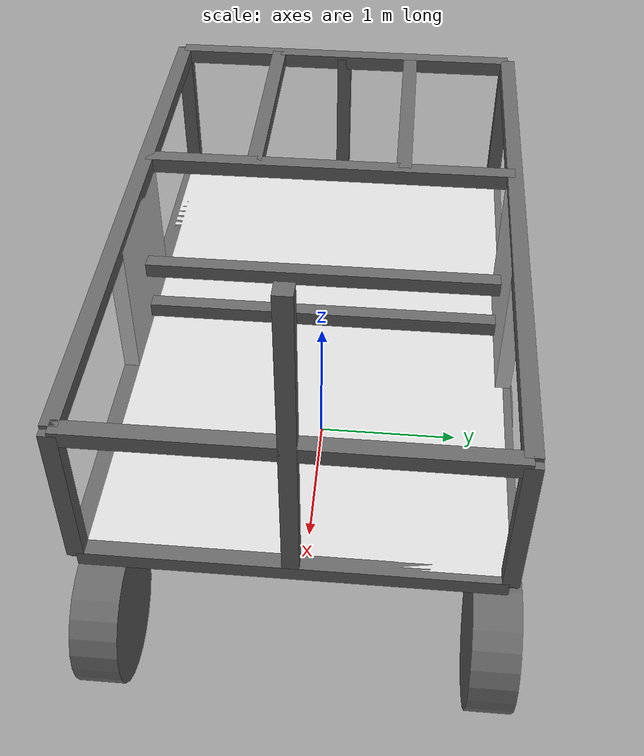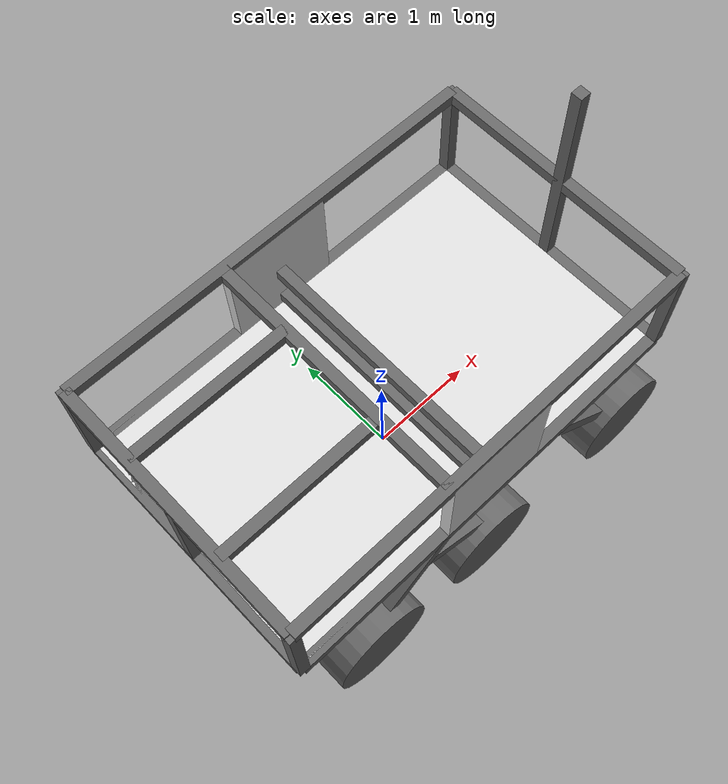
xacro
<?xml version="1.0"?>
<robot xmlns:xacro="http://www.ros.org/wiki/xacro">

    <xacro:include filename="colours.xacro" />
    <xacro:include filename="inertial_macros.xacro" />

    <!-- BASE LINK -->
    <link name="base_link">
    </link>

    <!-- CHASSIS -->
    <joint name = "chassis_joint" type= "fixed">
        <parent link = "base_link"/>
        <child link = "chassis_link"/>
        <origin xyz = "0 0 1"/>
    </joint>

    <link name = "chassis_link">
        <visual>
            <origin xyz = "0 0 0"/>
            <geometry>
                <box size = "4 2.46 0.1"/>
            </geometry>
            <material name ="gray"/>
        </visual>
        <collision>
            <origin xyz = "0 0 0"/>
            <geometry>
                <box size = "4 2.46 0.1"/>
            </geometry>
        </collision>
        <xacro:inertial_box mass="1" x="4" y="2.46" z="0.1">
            <origin xyz="0 0 0" rpy="-${pi/2} 0 0"/>
        </xacro:inertial_box>
    </link>

    <gazebo reference = "chassis_link">
        <material> Gazebo/Red </material>
    </gazebo>

    <!-- right square -->
    <joint name = "r_s_joint" type= "fixed">
        <parent link = "base_link"/>
        <child link = "r_s_link"/>
        <origin xyz = "0 0 0" rpy="-${pi/2} 0 0"/>
    </joint>

    <link name = "r_s_link">
        <visual>
            <origin xyz = "0 -1.5 -1.23"/>
            <geometry>
                <box size = "1 1 0.1"/>
            </geometry>
            <material name ="gray"/>
        </visual>
        <collision>
            <origin xyz = "0 -1.5 -1.23"/>
            <geometry>
                <box size = "1 1 0.1"/>
            </geometry>
        </collision>
        <xacro:inertial_box mass="1" x="1" y="1" z="0.1">
            <origin xyz="0 0 0" rpy="-${pi/2} 0 0"/>
        </xacro:inertial_box>
    </link>

    <gazebo reference = "r_s_link">
        <material> Gazebo/Red </material>
    </gazebo>

    <!-- left square -->
    <joint name = "l_s_joint" type= "fixed">
        <parent link = "base_link"/>
        <child link = "l_s_link"/>
        <origin xyz = "0 0 0" rpy="-${pi/2} 0 0"/>
    </joint>

    <link name = "l_s_link">
        <visual>
            <origin xyz = "0 -1.5 1.23"/>
            <geometry>
                <box size = "1 1 0.1"/>
            </geometry>
            <material name ="gray"/>
        </visual>
        <collision>
            <origin xyz = "0 -1.5 -1.23"/>
            <geometry>
                <box size = "1 1 0.1"/>
            </geometry>
        </collision>
        <xacro:inertial_box mass="1" x="1" y="1" z="0.1">
            <origin xyz="0 0 0" rpy="-${pi/2} 0 0"/>
        </xacro:inertial_box>
    </link>

    <gazebo reference = "l_s_link">
        <material> Gazebo/Red </material>
    </gazebo>

    <!--Camera joint-->
    <joint name= "camera_joint" type= "fixed">
    	<parent link ="base_link"/>
    	<child link= "camera_link"/>
    	<origin xyz="0 0 2"/>
    </joint>

    <link name="camera_link">
    	<visual>
    	    <origin xyz="2 0 0.05"/>
    	    <geometry>
    	    	<box size ="0.1 0.1 2"/>
    	    </geometry>
    	    <material name="white"/>
    	</visual>
    	<collision>
    	    <origin xyz="2 0 0.05"/>
    	    <geometry>
    	    	<box size ="0.1 0.1 2"/>
    	    </geometry>
    	    <material name="white"/>
    	</collision>
    	<xacro:inertial_box mass ="1" x="0.1" y="0.1" z="2">
    		<origin xyz="0 2 0" rpy="0 0 0"/>
    	</xacro:inertial_box>
    </link>
    <gazebo reference= "camera_link">
    	<material> Gazebo/White</material>
    </gazebo>

    <!--middle up joint-->
    <joint name= "mi_up_joint" type= "fixed">
    	<parent link ="base_link"/>
    	<child link= "mi_up_link"/>
    	<origin xyz="0 0 2"/>
    </joint>

    <link name="mi_up_link">
    	<visual>
    	    <origin xyz="0 0 -0.5"/>
    	    <geometry>
    	    	<box size ="0.1 2.46 0.1"/>
    	    </geometry>
    	    <material name="white"/>
    	</visual>
    	<collision>
    	    <origin xyz="0 0 -0.5"/>
    	    <geometry>
    	    	<box size ="0.1 2.46 0.1"/>
    	    </geometry>
    	    <material name="white"/>
    	</collision>
    	<xacro:inertial_box mass ="1" x="0.1" y="2.46" z="0.1">
    		<origin xyz="0 2 0" rpy="0 0 0"/>
    	</xacro:inertial_box>
    </link>
    <gazebo reference= "mi_up_link">
    	<material> Gazebo/White</material>
    </gazebo>

    <!--middle down joint-->
    <joint name= "mi_down_joint" type= "fixed">
    	<parent link ="base_link"/>
    	<child link= "mi_down_link"/>
    	<origin xyz="0 0 2"/>
    </joint>

    <link name="mi_down_link">
    	<visual>
    	    <origin xyz="0 0 -0.85"/>
    	    <geometry>
    	    	<box size ="0.1 2.46 0.1"/>
    	    </geometry>
    	    <material name="white"/>
    	</visual>
    	<collision>
    	    <origin xyz="0 0 -0.85"/>
    	    <geometry>
    	    	<box size ="0.1 2.46 0.1"/>
    	    </geometry>
    	    <material name="white"/>
    	</collision>
    	<xacro:inertial_box mass ="1" x="0.1" y="2.46" z="0.1">
    		<origin xyz="0 2 0" rpy="0 0 0"/>
    	</xacro:inertial_box>
    </link>
    <gazebo reference= "mi_down_link">
    	<material> Gazebo/White</material>
    </gazebo>

    <!--front left joint-->
    <joint name= "fl_joint" type= "fixed">
    	<parent link ="base_link"/>
    	<child link= "fl_link"/>
    	<origin xyz="0 0 1"/>
    </joint>

    <link name="fl_link">
    	<visual>
    	    <origin xyz="2 1.23 0.525"/>
    	    <geometry>
    	    	<box size ="0.1 0.1 1"/>
    	    </geometry>
    	    <material name="white"/>
    	</visual>
    	<collision>
    	    <origin xyz="2 1.23 0.525"/>
    	    <geometry>
    	    	<box size ="0.1 0.1 1"/>
    	    </geometry>
    	    <material name="white"/>
    	</collision>
    	<xacro:inertial_box mass ="1" x="0.1" y="0.1" z="1">
    		<origin xyz="2 1.23 0" rpy="0 0 0"/>
    	</xacro:inertial_box>
    </link>
    <gazebo reference= "fl_link">
    	<material> Gazebo/White</material>
    </gazebo>

    <!--front right joint-->
    <joint name= "fr_joint" type= "fixed">
    	<parent link ="base_link"/>
    	<child link= "fr_link"/>
    	<origin xyz="0 0 1"/>
    </joint>

    <link name="fr_link">
    	<visual>
    	    <origin xyz="2 -1.23 0.525"/>
    	    <geometry>
    	    	<box size ="0.1 0.1 1"/>
    	    </geometry>
    	    <material name="white"/>
    	</visual>
    	<collision>
    	    <origin xyz="2 1.23 0.525"/>
    	    <geometry>
    	    	<box size ="0.1 0.1 1"/>
    	    </geometry>
    	    <material name="white"/>
    	</collision>
    	<xacro:inertial_box mass ="1" x="0.1" y="0.1" z="1">
    		<origin xyz="-1.23 2 0" rpy="0 0 0"/>
    	</xacro:inertial_box>
    </link>
    <gazebo reference= "fr_link">
    	<material> Gazebo/White</material>
    </gazebo>

    <!--back left joint-->
    <joint name= "bl_joint" type= "fixed">
    	<parent link ="base_link"/>
    	<child link= "bl_link"/>
    	<origin xyz="0 0 1"/>
    </joint>

    <link name="bl_link">
    	<visual>
    	    <origin xyz="-2 1.23 0.525"/>
    	    <geometry>
    	    	<box size ="0.1 0.1 1"/>
    	    </geometry>
    	    <material name="white"/>
    	</visual>
    	<collision>
    	    <origin xyz="-2 1.23 0.525"/>
    	    <geometry>
    	    	<box size ="0.1 0.1 1"/>
    	    </geometry>
    	    <material name="white"/>
    	</collision>
    	<xacro:inertial_box mass ="1" x="0.1" y="0.1" z="1">
    		<origin xyz="1.23 -2 0" rpy="0 0 0"/>
    	</xacro:inertial_box>
    </link>
    <gazebo reference= "bl_link">
    	<material> Gazebo/White</material>
    </gazebo>

    <!--back middle joint-->
    <joint name= "bm_joint" type= "fixed">
    	<parent link ="base_link"/>
    	<child link= "bm_link"/>
    	<origin xyz="0 0 1"/>
    </joint>

    <link name="bm_link">
    	<visual>
    	    <origin xyz="-2 0 0.525"/>
    	    <geometry>
    	    	<box size ="0.1 0.1 1"/>
    	    </geometry>
    	    <material name="white"/>
    	</visual>
    	<collision>
    	    <origin xyz="-2 0 0.525"/>
    	    <geometry>
    	    	<box size ="0.1 0.1 1"/>
    	    </geometry>
    	    <material name="white"/>
    	</collision>
    	<xacro:inertial_box mass ="1" x="0.1" y="0.1" z="1">
    		<origin xyz="0 -2 0" rpy="0 0 0"/>
    	</xacro:inertial_box>
    </link>
    <gazebo reference= "bm_link">
    	<material> Gazebo/White</material>
    </gazebo>

    <!--back right joint-->
    <joint name= "br_joint" type= "fixed">
    	<parent link ="base_link"/>
    	<child link= "br_link"/>
    	<origin xyz="0 0 1"/>
    </joint>

    <link name="br_link">
    	<visual>
    	    <origin xyz="-2 -1.23 0.525"/>
    	    <geometry>
    	    	<box size ="0.1 0.1 1"/>
    	    </geometry>
    	    <material name="white"/>
    	</visual>
    	<collision>
    	    <origin xyz="-2 -1.23 1.05"/>
    	    <geometry>
    	    	<box size ="0.1 0.1 1"/>
    	    </geometry>
    	    <material name="white"/>
    	</collision>
    	<xacro:inertial_box mass ="1" x="0.1" y="0.1" z="1">
    		<origin xyz="-1.23 -2 0" rpy="0 0 0"/>
    	</xacro:inertial_box>
    </link>
    <gazebo reference= "br_link">
    	<material> Gazebo/White</material>
    </gazebo>

    <!--front joint-->
    <joint name= "front_joint" type= "fixed">
    	<parent link ="base_link"/>
    	<child link= "front_link"/>
    	<origin xyz="2 0 1"/>
    </joint>

    <link name="front_link">
    	<visual>
    	    <origin xyz="0 0 0"/>
    	    <geometry>
    	    	<box size ="0.1 2.45 0.1"/>
    	    </geometry>
    	    <material name="white"/>
    	</visual>
    	<collision>
    	    <origin xyz="0 0 0"/>
    	    <geometry>
    	    	<box size ="0.1 2.46 0.1"/>
    	    </geometry>
    	    <material name="white"/>
    	</collision>
    	<xacro:inertial_box mass ="1" x="0.1" y="0.1" z="2.46">
    		<origin xyz="0 2 0" rpy="0 0 0"/>
    	</xacro:inertial_box>
    </link>
    <gazebo reference= "front_link">
    	<material> Gazebo/White</material>
    </gazebo>

    <!--front up joint-->
    <joint name= "f_up_joint" type= "fixed">
    	<parent link ="base_link"/>
    	<child link= "f_up_link"/>
    	<origin xyz="2 0 2"/>
    </joint>

    <link name="f_up_link">
    	<visual>
    	    <origin xyz="0 0 0"/>
    	    <geometry>
    	    	<box size ="0.1 2.46 0.1"/>
    	    </geometry>
    	    <material name="white"/>
    	</visual>
    	<collision>
    	    <origin xyz="0 0 0"/>
    	    <geometry>
    	    	<box size ="0.1 2.46 0.1"/>
    	    </geometry>
    	    <material name="white"/>
    	</collision>
    	<xacro:inertial_box mass ="1" x="0.1" y="0.1" z="2.46">
    		<origin xyz="0 2 0" rpy="0 0 0"/>
    	</xacro:inertial_box>
    </link>

    <gazebo reference= "f_up_link">
    	<material> Gazebo/White</material>
    </gazebo>

    <!--right up joint-->
    <joint name= "r_up_joint" type= "fixed">
    	<parent link ="base_link"/>
    	<child link= "r_up_link"/>
    	<origin xyz="0 1.23 2"/>
    </joint>

    <link name="r_up_link">
    	<visual>
    	    <origin xyz="0 0 0"/>
    	    <geometry>
    	    	<box size ="4 0.1 0.1"/>
    	    </geometry>
    	    <material name="white"/>
    	</visual>
    	<collision>
    	    <origin xyz="0 0 0"/>
    	    <geometry>
    	    	<box size ="4 0.1 0.1"/>
    	    </geometry>
    	    <material name="white"/>
    	</collision>
    	<xacro:inertial_box mass ="1" x="4" y="0.1" z="0.1">
    		<origin xyz="0 1.23 2" rpy="0 0 0"/>
    	</xacro:inertial_box>
    </link>
    <gazebo reference= "r_up_link">
    	<material> Gazebo/White</material>
    </gazebo>

    <!--right joint-->
    <joint name= "r_joint" type= "fixed">
    	<parent link ="base_link"/>
    	<child link= "r_link"/>
    	<origin xyz="0 1.23 1"/>
    </joint>

    <link name="r_link">
    	<visual>
    	    <origin xyz="0 0 0"/>
    	    <geometry>
    	    	<box size ="4 0.1 0.1"/>
    	    </geometry>
    	    <material name="white"/>
    	</visual>
    	<collision>
    	    <origin xyz="0 0 0"/>
    	    <geometry>
    	    	<box size ="4 0.1 0.1"/>
    	    </geometry>
    	    <material name="white"/>
    	</collision>
    	<xacro:inertial_box mass ="1" x="4" y="0.1" z="0.1">
    		<origin xyz="0 1.23 0" rpy="0 0 0"/>
    	</xacro:inertial_box>
    </link>
    <gazebo reference= "r_link">
    	<material> Gazebo/White</material>
    </gazebo>

<!--left up joint-->
    <joint name= "l_up_joint" type= "fixed">
    	<parent link ="base_link"/>
    	<child link= "l_up_link"/>
    	<origin xyz="0 -1.23 2"/>
    </joint>

    <link name="l_up_link">
    	<visual>
    	    <origin xyz="0 0 0"/>
    	    <geometry>
    	    	<box size ="4 0.1 0.1"/>
    	    </geometry>
    	    <material name="white"/>
    	</visual>
    	<collision>
    	    <origin xyz="0 0 0"/>
    	    <geometry>
    	    	<box size ="4 0.1 0.1"/>
    	    </geometry>
    	    <material name="white"/>
    	</collision>
    	<xacro:inertial_box mass ="1" x="4" y="0.1" z="0.1">
    		<origin xyz="0 -1.23 1" rpy="0 0 0"/>
    	</xacro:inertial_box>
    </link>
    <gazebo reference= "l_up_link">
    	<material> Gazebo/White</material>
    </gazebo>

    <!--left joint-->
    <joint name= "l_joint" type= "fixed">
    	<parent link ="base_link"/>
    	<child link= "l_link"/>
    	<origin xyz="0 -1.23 1"/>
    </joint>

    <link name="l_link">
    	<visual>
    	    <origin xyz="0 0 0"/>
    	    <geometry>
    	    	<box size ="4 0.1 0.1"/>
    	    </geometry>
    	    <material name="white"/>
    	</visual>
    	<collision>
    	    <origin xyz="0 0 0"/>
    	    <geometry>
    	    	<box size ="4 0.1 0.1"/>
    	    </geometry>
    	    <material name="white"/>
    	</collision>
    	<xacro:inertial_box mass ="1" x="4" y="0.1" z="0.1">
    		<origin xyz="0 -1.23 0" rpy="0 0 0"/>
    	</xacro:inertial_box>
    </link>
    <gazebo reference= "l_link">
    	<material> Gazebo/White</material>
    </gazebo>

<!--back joint-->
    <joint name= "back_joint" type= "fixed">
    	<parent link ="base_link"/>
    	<child link= "back_link"/>
    	<origin xyz="-2 0 1"/>
    </joint>

    <link name="back_link">
    	<visual>
    	    <origin xyz="0 0 0"/>
    	    <geometry>
    	    	<box size ="0.1 2.46 0.1"/>
    	    </geometry>
    	    <material name="white"/>
    	</visual>
    	<collision>
    	    <origin xyz="0 0 0"/>
    	    <geometry>
    	    	<box size ="0.1 2.46 0.1"/>
    	    </geometry>
    	    <material name="white"/>
    	</collision>
    	<xacro:inertial_box mass ="1" x="0.1" y="0.1" z="2.46">
    		<origin xyz="0 -2 0" rpy="0 0 0"/>
    	</xacro:inertial_box>
    </link>
    <gazebo reference= "back_link">
    	<material> Gazebo/White</material>
    </gazebo>
<!--back up joint-->
    <joint name= "b_up_joint" type= "fixed">
    	<parent link ="base_link"/>
    	<child link= "b_up_link"/>
    	<origin xyz="-2 0 2"/>
    </joint>

    <link name="b_up_link">
    	<visual>
    	    <origin xyz="0 0 0"/>
    	    <geometry>
    	    	<box size ="0.1 2.46 0.1"/>
    	    </geometry>
    	    <material name="white"/>
    	</visual>
    	<collision>
    	    <origin xyz="0 0 0"/>
    	    <geometry>
    	    	<box size ="0.1 2.46 0.1"/>
    	    </geometry>
    	    <material name="white"/>
    	</collision>
    	<xacro:inertial_box mass ="1" x="0.1" y="0.1" z="2.46">
    		<origin xyz="0 -2 0" rpy="0 0 0"/>
    	</xacro:inertial_box>
    </link>
    <gazebo reference= "b_up_link">
    	<material> Gazebo/White</material>
    </gazebo>

    <!--middle up joint-->
    <joint name= "m_up_joint" type= "fixed">
    	<parent link ="base_link"/>
    	<child link= "m_up_link"/>
    	<origin xyz="-0.5 0 2"/>
    </joint>

    <link name="m_up_link">
    	<visual>
    	    <origin xyz="0 0 0"/>
    	    <geometry>
    	    	<box size ="0.1 2.46 0.1"/>
    	    </geometry>
    	    <material name="white"/>
    	</visual>
    	<collision>
    	    <origin xyz="0 0 0"/>
    	    <geometry>
    	    	<box size ="0.1 2.46 0.1"/>
    	    </geometry>
    	    <material name="white"/>
    	</collision>
    	<xacro:inertial_box mass ="1" x="0.1" y="0.1" z="2.46">
    		<origin xyz="0 -0.5 0" rpy="0 0 0"/>
    	</xacro:inertial_box>
    </link>
    <gazebo reference= "m_up_link">
    	<material> Gazebo/White</material>
    </gazebo>

    <!--right back up joint-->
    <joint name= "rb_up_joint" type= "fixed">
    	<parent link ="b_up_link"/>
    	<child link= "rb_up_link"/>
    	<origin xyz="0 0.5 0"/>
    </joint>

    <link name="rb_up_link">
    	<visual>
    	    <origin xyz="0.75 0 0"/>
    	    <geometry>
    	    	<box size ="1.5 0.1 0.1"/>
    	    </geometry>
    	    <material name="white"/>
    	</visual>
    	<collision>
    	    <origin xyz="0.75 0 0"/>
    	    <geometry>
    	    	<box size ="1.5 0.1 0.1"/>
    	    </geometry>
    	    <material name="white"/>
    	</collision>
    	<xacro:inertial_box mass ="1" x="1.5" y="0.1" z="0.1">
    		<origin xyz="0 1.5 0" rpy="0 0 0"/>
    	</xacro:inertial_box>
    </link>

    <gazebo reference= "rb_up_link">
    	<material> Gazebo/White</material>
    </gazebo>

    <!--left back up joint-->
    <joint name= "lb_up_joint" type= "fixed">
    	<parent link ="b_up_link"/>
    	<child link= "lb_up_link"/>
    	<origin xyz="0 -0.5 0"/>
    </joint>

    <link name="lb_up_link">
    	<visual>
    	    <origin xyz="0.75 0 0"/>
    	    <geometry>
    	    	<box size ="1.5 0.1 0.1"/>
    	    </geometry>
    	    <material name="white"/>
    	</visual>
    	<collision>
    	    <origin xyz="0.75 0 0"/>
    	    <geometry>
    	    	<box size ="1.5 0.1 0.1"/>
    	    </geometry>
    	    <material name="white"/>
    	</collision>
    	<xacro:inertial_box mass ="1" x="1.5" y="0.1" z="0.1">
    		<origin xyz="0 1.5 0" rpy="0 0 0"/>
    	</xacro:inertial_box>
    </link>

    <gazebo reference= "lb_up_link">
    	<material> Gazebo/White</material>
    </gazebo>

    <!-- LEFT FRONT WHEEL-->
    <joint name = "lf_wheel_joint" type= "continuous">
        <parent link = "chassis_link"/>
        <child link = "lf_wheel_link"/>
        <origin xyz = "1.3 1.23 -1" rpy="-${pi/2} 0 0"/>
        <axis xyz = "0 0 0.5"/>
    </joint>

    <link name = "lf_wheel_link">
        <visual>
        <origin xyz="0.4 0 0"/>
            <geometry>
                <cylinder radius = "0.475" length="0.30"/>
            </geometry>
            <material name ="white"/>
        </visual>
        <collision>
            <geometry>
                <cylinder radius = "0.475" length="0.30"/>
            </geometry>
        </collision>
        <xacro:inertial_cylinder mass="1" length="0.30" radius="0.475">
            <origin xyz="0 0 0" rpy="0 0 0"/>
        </xacro:inertial_cylinder>
    </link>

    <gazebo reference = "lf_wheel_link">
        <material> Gazebo/White </material>
    </gazebo>

	<!--left front wheel joint-->
	<joint name = "lfj_wheel_joint" type= "fixed">
        <parent link = "chassis_link"/>
        <child link = "lfj_wheel_link"/>
        <origin xyz = "1.3 1.23 -2" rpy="-${pi/2} 0 0"/>
        <axis xyz = "0 0 0.5"/>
    </joint>

    <link name = "lfj_wheel_link">
        <visual>
			<origin xyz="0 -1.5 0" rpy="0 0 ${3*pi/4}"/>
            <geometry>
                <box size="0.1 1.4 0.1"/>
            </geometry>
            <material name ="white"/>
        </visual>
        <collision>
            <geometry>
                <box size="0.1 1.4 0.1"/>
            </geometry>
        </collision>
        <xacro:inertial_box mass="0.1" x="0.1" y="1.4" z="0.1">
            <origin xyz="0 0 0" rpy="0 0 0"/>
        </xacro:inertial_box>
    </link>

    <gazebo reference = "lfj_wheel_link">
        <material> Gazebo/White </material>
    </gazebo>

    <!-- RIGHT FRONT WHEEL-->
    <joint name = "rf_wheel_joint" type= "continuous">
        <parent link = "chassis_link"/>
        <child link = "rf_wheel_link"/>
        <origin xyz = "1.3 -1.23 -1" rpy="${pi/2} 0 0"/>
        <axis xyz = "0 0 -0.5"/>
    </joint>

    <link name = "rf_wheel_link">
        <visual>
        <origin xyz="0.4 0 0" />
            <geometry>
                <cylinder radius = "0.475" length="0.30"/>
            </geometry>
            <material name ="white"/>
        </visual>
        <collision>
            <geometry>
                <cylinder radius = "0.475" length="0.30"/>
            </geometry>
        </collision>
        <xacro:inertial_cylinder mass="1" length="0.30" radius="0.475">
            <origin xyz="0 0 0" rpy="0 0 0"/>
        </xacro:inertial_cylinder>
    </link>

    <gazebo reference = "rf_wheel_link">
        <material> Gazebo/White </material>
    </gazebo>

	<!--right front wheel joint-->
	<joint name = "rfj_wheel_joint" type= "fixed">
        <parent link = "base_link"/>
        <child link = "rfj_wheel_link"/>
        <origin xyz = "1.3 -1.23 0.5" rpy="0 ${3*pi/4} 0"/>
        <axis xyz = "0 0 -0.5"/>
    </joint>

    <link name = "rfj_wheel_link">
        <visual>
	    <origin xyz="0 0 0" rpy="0 0 0" />
            <geometry>
                <box size="0.1 0.1 1.4"/>
            </geometry>
            <material name ="white"/>
        </visual>
        <collision>
            <geometry>
                <box size="0.1 0.1 1"/>
            </geometry>
        </collision>
        <xacro:inertial_box mass="0.1" x="0.1" y="0.1" z="1.4">
            <origin xyz="0 0 0" rpy="0 0 0"/>
        </xacro:inertial_box>
    </link>

    <gazebo reference = "rfj_wheel_link">
        <material> Gazebo/White </material>
    </gazebo>

    <!-- LEFT MIDDLE WHEEL-->
    <joint name = "lm_wheel_joint" type= "continuous">
        <parent link = "chassis_link"/>
        <child link = "lm_wheel_link"/>
        <origin xyz = "0 1.23 -1" rpy="-${pi/2} 0 0"/>
        <axis xyz = "0 0 0.5"/>
    </joint>

    <link name = "lm_wheel_link">
        <visual>
            <geometry>
                <cylinder radius = "0.475" length="0.30"/>
            </geometry>
            <material name ="white"/>
        </visual>
        <collision>
            <geometry>
                <cylinder radius = "0.475" length="0.30"/>
            </geometry>
        </collision>
        <xacro:inertial_cylinder mass="0.1" length="0.30" radius="0.475">
            <origin xyz="0 0 0" rpy="0 0 0"/>
        </xacro:inertial_cylinder>
    </link>

    <gazebo reference = "lm_wheel_link">
        <material> Gazebo/White </material>
    </gazebo>

	<!--left middle wheel joint-->
	<joint name = "lmj_wheel_joint" type= "fixed">
        <parent link = "chassis_link"/>
        <child link = "lmj_wheel_link"/>
        <origin xyz = "0 1.23 -2" rpy="-${pi/2} 0 0"/>
        <axis xyz = "0 0 0.5"/>
    </joint>

    <link name = "lmj_wheel_link">
        <visual>
	<origin xyz="-0.3 -1.5 0" rpy="0 0 -${pi/3}"/>
            <geometry>
                <box size="0.1 1.4 0.1"/>
            </geometry>
            <material name ="white"/>
        </visual>
        <collision>
            <geometry>
                <box size="0.1 1.4 0.1"/>
            </geometry>
        </collision>
        <xacro:inertial_box mass="0.1" x="0.1" y="1.4" z="0.1">
            <origin xyz="0 0 0" rpy="0 0 0"/>
        </xacro:inertial_box>
    </link>

    <gazebo reference = "lmj_wheel_link">
        <material> Gazebo/White </material>
    </gazebo>

    <!-- RIGHT MIDDLE WHEEL-->
    <joint name = "rm_wheel_joint" type= "continuous">
        <parent link = "chassis_link"/>
        <child link = "rm_wheel_link"/>
        <origin xyz = "0 -1.23 -1" rpy="${pi/2} 0 0"/>
        <axis xyz = "0 0 -0.5"/>
    </joint>

    <link name = "rm_wheel_link">
        <visual>
            <geometry>
                <cylinder radius = "0.475" length="0.30"/>
            </geometry>
            <material name ="white"/>
        </visual>
        <collision>
            <geometry>
                <cylinder radius = "0.475" length="0.30"/>
            </geometry>
        </collision>
        <xacro:inertial_cylinder mass="0.1" length="0.30" radius="0.475">
            <origin xyz="0 0 0" rpy="0 0 0"/>
        </xacro:inertial_cylinder>
    </link>

    <gazebo reference = "rm_wheel_link">
        <material> Gazebo/White </material>
    </gazebo>

	<!--right middle wheel joint-->
    <joint name = "rmj_wheel_joint" type= "fixed">
        <parent link = "base_link"/>
        <child link = "rmj_wheel_link"/>
        <origin xyz = "-0.2 -1.23 0.5" rpy="0 0 0"/>
        <axis xyz = "0 0 -0.5"/>
    </joint>

    <link name = "rmj_wheel_link">
        <visual>
	    <origin xyz="0 0 0" rpy="0 -${pi/3} 0"/>
            <geometry>
                <box size="0.1 0.1 1.1"/>
            </geometry>
            <material name ="white"/>
        </visual>
        <collision>
            <geometry>
                <box size="0.1 0.1 1.1"/>
            </geometry>
        </collision>
        <xacro:inertial_box mass="0.1" x="0.1" y="0.1" z="1.1">
            <origin xyz="0 0 0" rpy="0 0 0"/>
        </xacro:inertial_box>
    </link>

    <gazebo reference = "rmj_wheel_link">
        <material> Gazebo/White </material>
    </gazebo>

    <!-- LEFT BACK WHEEL-->
    <joint name = "lb_wheel_joint" type= "continuous">
        <parent link = "chassis_link"/>
        <child link = "lb_wheel_link"/>
        <origin xyz = "-1.3 1.23 -1" rpy="-${pi/2} 0 0"/>
        <axis xyz = "0 0 0.5"/>
    </joint>

    <link name = "lb_wheel_link">
        <visual>
            <geometry>
                <cylinder radius = "0.475" length="0.30"/>
            </geometry>
            <material name ="white"/>
        </visual>
        <collision>
            <geometry>
                <cylinder radius = "0.475" length="0.30"/>
            </geometry>
        </collision>
        <xacro:inertial_cylinder mass="0.1" length="0.30" radius="0.475">
            <origin xyz="0 0 0" rpy="0 0 0"/>
        </xacro:inertial_cylinder>
    </link>

    <gazebo reference = "lb_wheel_link">
        <material> Gazebo/White </material>
    </gazebo>

	<!--left back wheel joint-->
	<joint name = "lbj_wheel_joint" type= "fixed">
        <parent link = "chassis_link"/>
        <child link = "lbj_wheel_link"/>
        <origin xyz = "-1.3 1.23 -2" rpy="-${pi/2} 0 0"/>
        <axis xyz = "0 0 0.5"/>
    </joint>

    <link name = "lbj_wheel_link">
        <visual>
		<origin xyz="0.1 -1.5 0" rpy="0 0 ${pi/4}"/>
            <geometry>
                <box size="0.1 1.4 0.1"/>
            </geometry>
            <material name ="white"/>
        </visual>
        <collision>
            <geometry>
                <box size="0.1 1.4 0.1"/>
            </geometry>
        </collision>
        <xacro:inertial_box mass="0.1" x="0.1" y="1.4" z="0.1">
            <origin xyz="0 0 0" rpy="0 0 0"/>
        </xacro:inertial_box>
    </link>

    <gazebo reference = "lbj_wheel_link">
        <material> Gazebo/White </material>
    </gazebo>

    <!-- RIGHT BACK WHEEL-->
    <joint name = "rb_wheel_joint" type= "continuous">
        <parent link = "chassis_link"/>
        <child link = "rb_wheel_link"/>
        <origin xyz = "-1.3 -1.23 -1" rpy="${pi/2} 0 0"/>
        <axis xyz = "0 0 -0.5"/>
    </joint>

    <link name = "rb_wheel_link">
        <visual>
            <geometry>
                <cylinder radius = "0.475" length="0.30"/>
            </geometry>
            <material name ="white"/>
        </visual>
        <collision>
            <geometry>
                <cylinder radius = "0.475" length="0.30"/>
            </geometry>
        </collision>
        <xacro:inertial_cylinder mass="0.1" length="0.30" radius="0.475">
            <origin xyz="0 0 0" rpy="0 0 0"/>
        </xacro:inertial_cylinder>
    </link>

    <gazebo reference = "rb_wheel_link">
        <material> Gazebo/White </material>
    </gazebo>

	<!--right back wheel joint-->
    <joint name = "rbj_wheel_joint" type= "fixed">
        <parent link = "base_link"/>
        <child link = "rbj_wheel_link"/>
        <origin xyz = "-1 -1.23 0.5" rpy="0 ${pi/4} 0"/>
        <axis xyz = "0 0 -0.5"/>
    </joint>

    <link name = "rbj_wheel_link">
        <visual>
	<origin xyz="0 0 0"/>
            <geometry>
                <box size="0.1 0.1 1.4"/>
            </geometry>
            <material name ="white"/>
        </visual>
        <collision>
            <geometry>
                <box size="0.1 0.1 1.4"/>
            </geometry>
        </collision>
        <xacro:inertial_box mass="0.1" x="0.1" y="0.1" z="1.5">
            <origin xyz="0 0 0" rpy="0 0 0"/>
        </xacro:inertial_box>
    </link>

    <gazebo reference = "rbj_wheel_link">
        <material> Gazebo/White </material>
    </gazebo>

</robot>

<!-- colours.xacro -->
<robot xmlns:xacro="http://www.ros.org/wiki/xacro" >

    <material name= "white">
        <color rgba="0.4 0.4 0.4 1" />
    </material>

    <material name= "black">
        <color rgba="0 0 0 1" />
    </material>

    <material name= "red">
        <color rgba="1 0 0 1" />
    </material>

    <material name= "blue">
        <color rgba="0 0 1 1" />
    </material>

    <material name= "green">
        <color rgba="0 1 0 1" />
    </material>
    <material name= "gray">
        <color rgba="0.85 0.85 0.85 1" />
    </material>

</robot>
